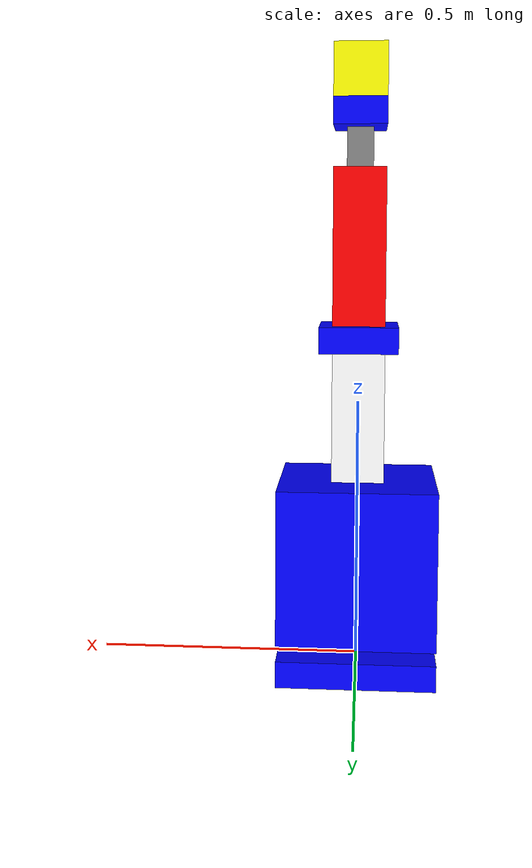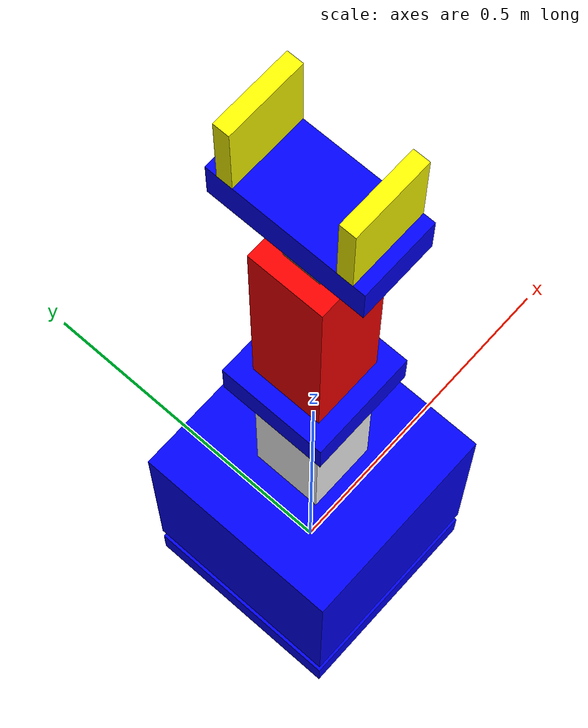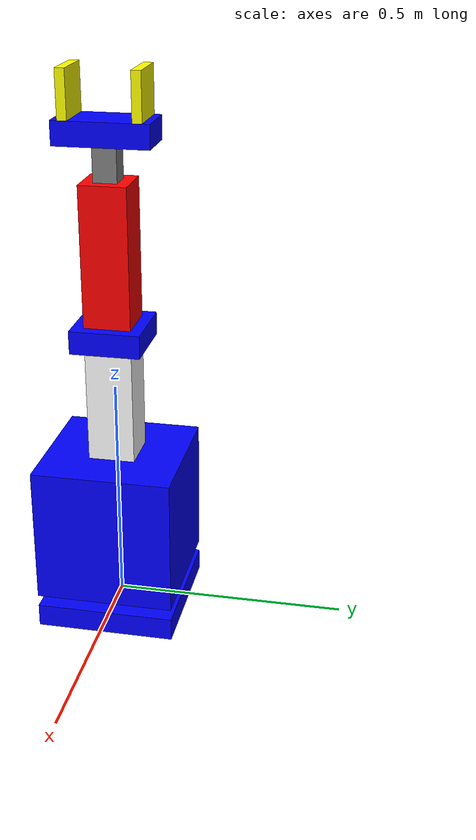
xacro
<?xml version="1.0"?>
<robot xmlns:xacro="http://www.ros.org/wiki/xacro" name="robot_arm">

    <xacro:arg name="initial_positions_file" default="initial_positions.yaml" />

    <!-- Import robot URDF -->
    <xacro:include filename="$(find robot_arm_description)/urdf/robot_arm.urdf"/>

    <!-- Import ros2_control xacro -->
    <xacro:include filename="robot_arm.ros2_control.xacro" />

    <!-- ros2_control macro call -->
    <xacro:robot_arm_ros2_control
        name="FakeSystem"
        initial_positions_file="$(arg initial_positions_file)" />

    <!-- Gazebo plugin (MUST be inside robot tag) -->
    <gazebo>
        <plugin filename="libgz_ros2_control-system.so"
                name="gz_ros2_control::GazeboSimROS2ControlPlugin">

            <parameters>$(find robot_arm_moveit_config)/config/ros2_controllers.yaml</parameters>
            <controller_manager_name>controller_manager</controller_manager_name>

        </plugin>
    </gazebo>

</robot>

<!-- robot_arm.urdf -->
<robot name="robot_arm">

  <!-- MATERIALS -->
  <material name="white"><color rgba="1 1 1 1"/></material>
  <material name="red"><color rgba="1 0 0 1"/></material>
  <material name="gray"><color rgba="0.5 0.5 0.5 1"/></material>
  <material name="yellow"><color rgba="1 1 0 1"/></material>
  <material name="blue"><color rgba="0 0 1 1"/></material>

  <!-- BASE -->
  <link name="base_link">

    <visual>
      <geometry>
        <box size="0.3 0.3 0.05"/>
      </geometry>
      <material name="blue"/>
    </visual>

    <collision>
      <geometry>
        <box size="0.3 0.3 0.05"/>
      </geometry>
    </collision>

  </link>

  <link name="base">

    <visual>
      <origin xyz="0 0 0.05"/>
      <geometry>
        <box size="0.3 0.3 0.3"/>
      </geometry>
      <material name="blue"/>
    </visual>

    <collision>
      <origin xyz="0 0 0.05"/>
      <geometry>
        <box size="0.3 0.3 0.3"/>
      </geometry>
    </collision>

  </link>

  <joint name="base_joint" type="revolute">
    <parent link="base_link"/>
    <child link="base"/>
    <origin xyz="0 0 0.15"/>
    <axis xyz="0 0 1"/>
    <limit lower="-1" upper="3.14" effort="-3.14" velocity="1"/>
  </joint>

  <!-- LINK1 -->
  <link name="link1">

    <visual>
      <origin xyz="0 0 0.15"/>
      <geometry>
        <box size="0.1 0.1 0.3"/>
      </geometry>
      <material name="white"/>
    </visual>

    <collision>
      <origin xyz="0 0 0.15"/>
      <geometry>
        <box size="0.1 0.1 0.3"/>
      </geometry>
    </collision>

  </link>

  <joint name="joint1" type="revolute">
    <parent link="base"/>
    <child link="link1"/>
    <origin xyz="0 0 0.15"/>
    <axis xyz="0 1 0"/>
    <limit lower="-1" upper="1" effort="1" velocity="1"/>
  </joint>

  <!-- LINK2 -->
  <link name="link2">

    <visual>
      <origin xyz="0 0 0.025"/>
      <geometry>
        <box size="0.15 0.15 0.05"/>
      </geometry>
      <material name="blue"/>
    </visual>

    <collision>
      <origin xyz="0 0 0.025"/>
      <geometry>
        <box size="0.15 0.15 0.05"/>
      </geometry>
    </collision>

  </link>

  <joint name="joint2" type="revolute">
    <parent link="link1"/>
    <child link="link2"/>
    <origin xyz="0 0 0.3"/>
    <axis xyz="0 0 1"/>
    <limit lower="-3.14" upper="3.14" effort="1" velocity="1"/>
  </joint>

  <!-- LINK3 -->
  <link name="link3">

    <visual>
      <origin xyz="0 0 0.15"/>
      <geometry>
        <box size="0.1 0.1 0.3"/>
      </geometry>
      <material name="red"/>
    </visual>

    <collision>
      <origin xyz="0 0 0.15"/>
      <geometry>
        <box size="0.1 0.1 0.3"/>
      </geometry>
    </collision>

  </link>

  <joint name="joint3" type="revolute">
    <parent link="link2"/>
    <child link="link3"/>
    <origin xyz="0 0 0.05"/>
    <axis xyz="1 0 0"/>
    <limit lower="-1.5" upper="1.5" effort="1" velocity="1"/>
  </joint>

  <!-- GRIPPER POLE -->
  <link name="gripper_pole_link">

    <visual>
      <origin xyz="0 0 -0.3"/>
      <geometry>
        <box size="0.05 0.05 0.4"/>
      </geometry>
      <material name="gray"/>
    </visual>

    <collision>
      <origin xyz="0 0 -0.3"/>
      <geometry>
        <box size="0.05 0.05 0.4"/>
      </geometry>
    </collision>

  </link>

  <joint name="gripper_extension" type="prismatic">
    <parent link="link3"/>
    <child link="gripper_pole_link"/>
    <origin xyz="0 0 0.5"/>
    <axis xyz="0 0 1"/>
    <limit lower="0" upper="0.3" effort="1000" velocity="0.5"/>
  </joint>

  <!-- LINK4 -->
  <link name="link4_link">

    <visual>
      <origin xyz="0 0 -0.4"/>
      <geometry>
        <box size="0.1 0.2 0.05"/>
      </geometry>
      <material name="blue"/>
    </visual>

    <collision>
      <origin xyz="0 0 -0.4"/>
      <geometry>
        <box size="0.1 0.2 0.05"/>
      </geometry>
    </collision>

  </link>

  <joint name="link4_joint" type="revolute">
    <parent link="gripper_pole_link"/>
    <child link="link4_link"/>
    <origin xyz="0 0 0.3"/>
    <axis xyz="0 0 1"/>
    <limit lower="-3.14" upper="3.14" effort="1" velocity="1"/>
  </joint>

  <!-- GRIPPERS -->
  <link name="left_gripper">
    <visual>
      <origin xyz="0 0.075 -0.325"/>
      <geometry><box size="0.1 0.02 0.1"/></geometry>
      <material name="yellow"/>
    </visual>
    <collision>
      <origin xyz="0 0.075 -0.325"/>
      <geometry><box size="0.1 0.02 0.1"/></geometry>
    </collision>
  </link>

  <link name="right_gripper">
    <visual>
      <origin xyz="0 -0.075 -0.325"/>
      <geometry><box size="0.1 0.02 0.1"/></geometry>
      <material name="yellow"/>
    </visual>
    <collision>
      <origin xyz="0 -0.075 -0.325"/>
      <geometry><box size="0.1 0.02 0.1"/></geometry>
    </collision>
  </link>

  <joint name="left_gripper_joint" type="prismatic">
    <parent link="link4_link"/>
    <child link="left_gripper"/>
    <origin xyz="0 0 0"/>
    <axis xyz="0 1 0"/>
    <limit lower="-0.065" upper="0" effort="1000" velocity="0.5"/>
  </joint>

  <joint name="right_gripper_joint" type="prismatic">
    <parent link="link4_link"/>
    <child link="right_gripper"/>
    <origin xyz="0 0 0"/>
    <axis xyz="0 -1 0"/>
    <limit lower="-0.065" upper="0" effort="1000" velocity="0.5"/>
  </joint>

</robot>
